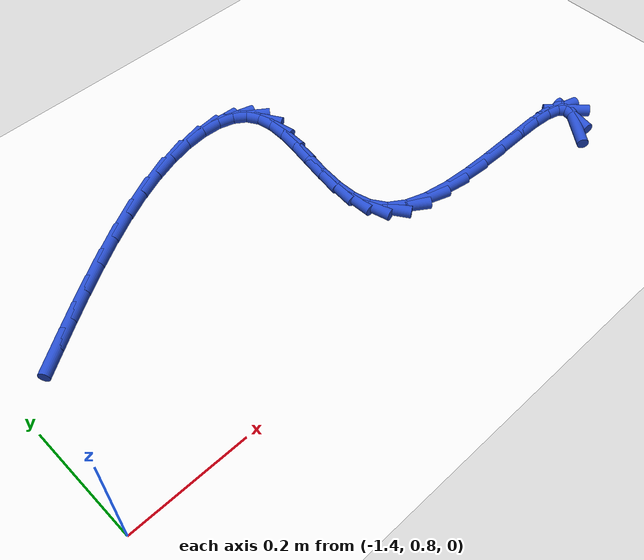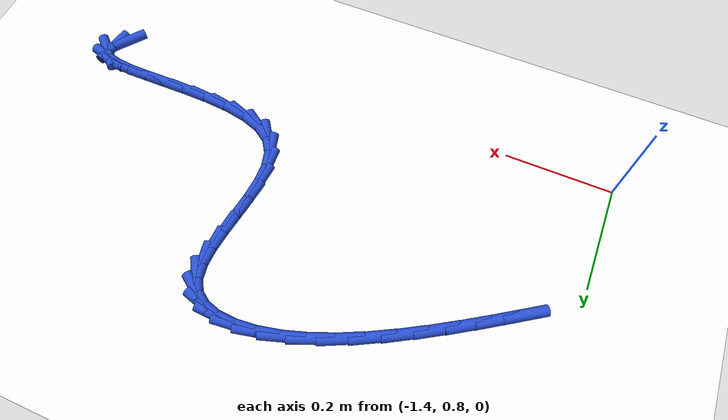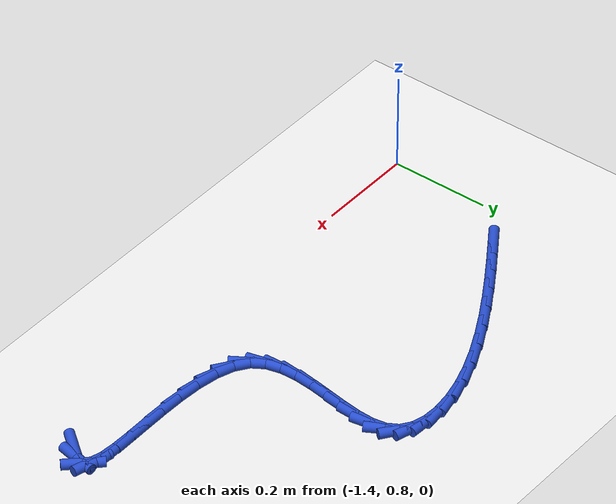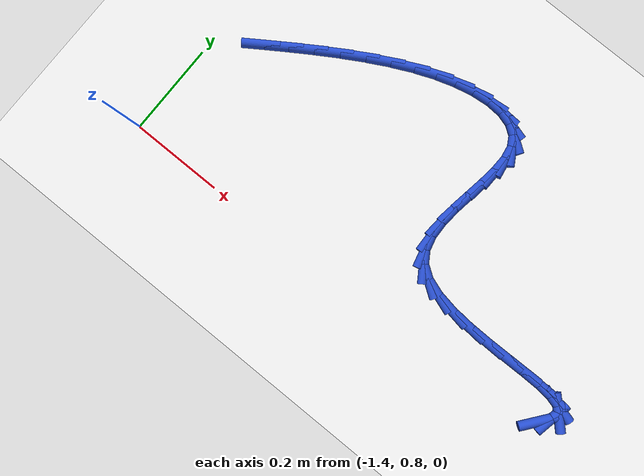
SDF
<sdf version="1.6">
 <world name="default">
  <model name="ground_plane">
   <static>1</static>
   <link name="link">
    <collision name="collision">
     <geometry><plane><normal>0 0 1</normal><size>100 100</size></plane></geometry>
     <surface><friction><ode><mu>100</mu><mu2>50</mu2></ode></friction></surface>
    </collision>
    <visual name="visual">
     <cast_shadows>0</cast_shadows>
     <geometry><plane><normal>0 0 1</normal><size>100 100</size></plane></geometry>
     <material>
      <script><uri>file://media/materials/scripts/gazebo.material</uri><name>Gazebo/WhiteGlow</name></script>
     </material>
    </visual>
   </link>
  </model>
  <model name="line">
   <link name="link_31">
    <pose>-0.4058090971265108 0.8472738672707357 0.01 0 1.57 0.911341981816925</pose>
    <collision name="collision">
     <geometry><cylinder><radius>0.01</radius><length>0.08</length></cylinder></geometry>
    </collision>
    <visual name="visual">
     <material>
      <script><name>Gazebo/Blue</name><uri>file://media/materials/scripts/gazebo.material</uri></script>
     </material>
     <geometry><cylinder><radius>0.01</radius><length>0.08</length></cylinder></geometry>
    </visual>
   </link>
   <link name="link_32">
    <pose>-0.3880265484437921 0.8702122554823173 0.01 0 1.57 1.3750526792150297</pose>
    <collision name="collision">
     <geometry><cylinder><radius>0.01</radius><length>0.08</length></cylinder></geometry>
    </collision>
    <visual name="visual">
     <material>
      <script><name>Gazebo/Blue</name><uri>file://media/materials/scripts/gazebo.material</uri></script>
     </material>
     <geometry><cylinder><radius>0.01</radius><length>0.08</length></cylinder></geometry>
    </visual>
   </link>
   <link name="link_33">
    <pose>-0.3847471597461507 0.8867512209621835 0.01 0 1.57 -0.7894456864371063</pose>
    <collision name="collision">
     <geometry><cylinder><radius>0.01</radius><length>0.08</length></cylinder></geometry>
    </collision>
    <visual name="visual">
     <material>
      <script><name>Gazebo/Blue</name><uri>file://media/materials/scripts/gazebo.material</uri></script>
     </material>
     <geometry><cylinder><radius>0.01</radius><length>0.08</length></cylinder></geometry>
    </visual>
   </link>
   <link name="link_34">
    <pose>-0.3954213623010875 0.8975121833147218 0.01 0 1.57 -0.2688832324161719</pose>
    <collision name="collision">
     <geometry><cylinder><radius>0.01</radius><length>0.08</length></cylinder></geometry>
    </collision>
    <visual name="visual">
     <material>
      <script><name>Gazebo/Blue</name><uri>file://media/materials/scripts/gazebo.material</uri></script>
     </material>
     <geometry><cylinder><radius>0.01</radius><length>0.08</length></cylinder></geometry>
    </visual>
   </link>
   <link name="link_35">
    <pose>-0.41779460253544365 0.9036772683841723 0.01 0 1.57 -0.08625716387484941</pose>
    <collision name="collision">
     <geometry><cylinder><radius>0.01</radius><length>0.08</length></cylinder></geometry>
    </collision>
    <visual name="visual">
     <material>
      <script><name>Gazebo/Blue</name><uri>file://media/materials/scripts/gazebo.material</uri></script>
     </material>
     <geometry><cylinder><radius>0.01</radius><length>0.08</length></cylinder></geometry>
    </visual>
   </link>
   <link name="link_36">
    <pose>-0.44961232687606045 0.9064286020147739 0.01 0 1.57 -0.013322443763485927</pose>
    <collision name="collision">
     <geometry><cylinder><radius>0.01</radius><length>0.08</length></cylinder></geometry>
    </collision>
    <visual name="visual">
     <material>
      <script><name>Gazebo/Blue</name><uri>file://media/materials/scripts/gazebo.material</uri></script>
     </material>
     <geometry><cylinder><radius>0.01</radius><length>0.08</length></cylinder></geometry>
    </visual>
   </link>
   <link name="link_37">
    <pose>-0.4886199817497788 0.9069483100507664 0.01 0 1.57 0.0120557463879833</pose>
    <collision name="collision">
     <geometry><cylinder><radius>0.01</radius><length>0.08</length></cylinder></geometry>
    </collision>
    <visual name="visual">
     <material>
      <script><name>Gazebo/Blue</name><uri>file://media/materials/scripts/gazebo.material</uri></script>
     </material>
     <geometry><cylinder><radius>0.01</radius><length>0.08</length></cylinder></geometry>
    </visual>
   </link>
   <link name="link_38">
    <pose>-0.5325630135834396 0.9064185183363891 0.01 0 1.57 0.008518300605534806</pose>
    <collision name="collision">
     <geometry><cylinder><radius>0.01</radius><length>0.08</length></cylinder></geometry>
    </collision>
    <visual name="visual">
     <material>
      <script><name>Gazebo/Blue</name><uri>file://media/materials/scripts/gazebo.material</uri></script>
     </material>
     <geometry><cylinder><radius>0.01</radius><length>0.08</length></cylinder></geometry>
    </visual>
   </link>
   <link name="link_39">
    <pose>-0.5791868688038845 0.9060213527158821 0.01 0 1.57 -0.019499842174835396</pose>
    <collision name="collision">
     <geometry><cylinder><radius>0.01</radius><length>0.08</length></cylinder></geometry>
    </collision>
    <visual name="visual">
     <material>
      <script><name>Gazebo/Blue</name><uri>file://media/materials/scripts/gazebo.material</uri></script>
     </material>
     <geometry><cylinder><radius>0.01</radius><length>0.08</length></cylinder></geometry>
    </visual>
   </link>
   <link name="link_40">
    <pose>-0.6262369938379544 0.9069389390334842 0.01 0 1.57 -0.07536176159319098</pose>
    <collision name="collision">
     <geometry><cylinder><radius>0.01</radius><length>0.08</length></cylinder></geometry>
    </collision>
    <visual name="visual">
     <material>
      <script><name>Gazebo/Blue</name><uri>file://media/materials/scripts/gazebo.material</uri></script>
     </material>
     <geometry><cylinder><radius>0.01</radius><length>0.08</length></cylinder></geometry>
    </visual>
   </link>
   <link name="link_41">
    <pose>-0.6714588351124904 0.9103534031334356 0.01 0 1.57 -0.17074786461326713</pose>
    <collision name="collision">
     <geometry><cylinder><radius>0.01</radius><length>0.08</length></cylinder></geometry>
    </collision>
    <visual name="visual">
     <material>
      <script><name>Gazebo/Blue</name><uri>file://media/materials/scripts/gazebo.material</uri></script>
     </material>
     <geometry><cylinder><radius>0.01</radius><length>0.08</length></cylinder></geometry>
    </visual>
   </link>
   <link name="link_42">
    <pose>-0.7125978390543336 0.9174468708599754 0.01 0 1.57 -0.3308787273079353</pose>
    <collision name="collision">
     <geometry><cylinder><radius>0.01</radius><length>0.08</length></cylinder></geometry>
    </collision>
    <visual name="visual">
     <material>
      <script><name>Gazebo/Blue</name><uri>file://media/materials/scripts/gazebo.material</uri></script>
     </material>
     <geometry><cylinder><radius>0.01</radius><length>0.08</length></cylinder></geometry>
    </visual>
   </link>
   <link name="link_43">
    <pose>-0.7473994520903247 0.9294014680573432 0.01 0 1.57 -0.6017263187127433</pose>
    <collision name="collision">
     <geometry><cylinder><radius>0.01</radius><length>0.08</length></cylinder></geometry>
    </collision>
    <visual name="visual">
     <material>
      <script><name>Gazebo/Blue</name><uri>file://media/materials/scripts/gazebo.material</uri></script>
     </material>
     <geometry><cylinder><radius>0.01</radius><length>0.08</length></cylinder></geometry>
    </visual>
   </link>
   <link name="link_44">
    <pose>-0.7736093890145485 0.9473991533755644 0.01 0 1.57 -0.9886532006786259</pose>
    <collision name="collision">
     <geometry><cylinder><radius>0.01</radius><length>0.08</length></cylinder></geometry>
    </collision>
    <visual name="visual">
     <material>
      <script><name>Gazebo/Blue</name><uri>file://media/materials/scripts/gazebo.material</uri></script>
     </material>
     <geometry><cylinder><radius>0.01</radius><length>0.08</length></cylinder></geometry>
    </visual>
   </link>
   <link name="link_45">
    <pose>-0.7898517021059728 0.972074676557782 0.01 0 1.57 -1.3203665644300926</pose>
    <collision name="collision">
     <geometry><cylinder><radius>0.01</radius><length>0.08</length></cylinder></geometry>
    </collision>
    <visual name="visual">
     <material>
      <script><name>Gazebo/Blue</name><uri>file://media/materials/scripts/gazebo.material</uri></script>
     </material>
     <geometry><cylinder><radius>0.01</radius><length>0.08</length></cylinder></geometry>
    </visual>
   </link>
   <link name="link_46">
    <pose>-0.7975828652404875 1.0022981736849026 0.01 0 1.57 -1.534461543025685</pose>
    <collision name="collision">
     <geometry><cylinder><radius>0.01</radius><length>0.08</length></cylinder></geometry>
    </collision>
    <visual name="visual">
     <material>
      <script><name>Gazebo/Blue</name><uri>file://media/materials/scripts/gazebo.material</uri></script>
     </material>
     <geometry><cylinder><radius>0.01</radius><length>0.08</length></cylinder></geometry>
    </visual>
   </link>
   <link name="link_47">
    <pose>-0.7988292093562954 1.0365847568686712 0.01 0 1.57 1.4838827031104111</pose>
    <collision name="collision">
     <geometry><cylinder><radius>0.01</radius><length>0.08</length></cylinder></geometry>
    </collision>
    <visual name="visual">
     <material>
      <script><name>Gazebo/Blue</name><uri>file://media/materials/scripts/gazebo.material</uri></script>
     </material>
     <geometry><cylinder><radius>0.01</radius><length>0.08</length></cylinder></geometry>
    </visual>
   </link>
   <link name="link_48">
    <pose>-0.7956170653915993 1.0734495382208322 0.01 0 1.57 1.4231797446355212</pose>
    <collision name="collision">
     <geometry><cylinder><radius>0.01</radius><length>0.08</length></cylinder></geometry>
    </collision>
    <visual name="visual">
     <material>
      <script><name>Gazebo/Blue</name><uri>file://media/materials/scripts/gazebo.material</uri></script>
     </material>
     <geometry><cylinder><radius>0.01</radius><length>0.08</length></cylinder></geometry>
    </visual>
   </link>
   <link name="link_49">
    <pose>-0.7899727642846015 1.1114076298531304 0.01 0 1.57 1.4111163979288632</pose>
    <collision name="collision">
     <geometry><cylinder><radius>0.01</radius><length>0.08</length></cylinder></geometry>
    </collision>
    <visual name="visual">
     <material>
      <script><name>Gazebo/Blue</name><uri>file://media/materials/scripts/gazebo.material</uri></script>
     </material>
     <geometry><cylinder><radius>0.01</radius><length>0.08</length></cylinder></geometry>
    </visual>
   </link>
   <link name="link_50">
    <pose>-0.7839226369735051 1.1489741438773104 0.01 0 1.57 1.4473141304484487</pose>
    <collision name="collision">
     <geometry><cylinder><radius>0.01</radius><length>0.08</length></cylinder></geometry>
    </collision>
    <visual name="visual">
     <material>
      <script><name>Gazebo/Blue</name><uri>file://media/materials/scripts/gazebo.material</uri></script>
     </material>
     <geometry><cylinder><radius>0.01</radius><length>0.08</length></cylinder></geometry>
    </visual>
   </link>
   <link name="link_51">
    <pose>-0.7794930143965126 1.184664192405117 0.01 0 1.57 1.546587679474687</pose>
    <collision name="collision">
     <geometry><cylinder><radius>0.01</radius><length>0.08</length></cylinder></geometry>
    </collision>
    <visual name="visual">
     <material>
      <script><name>Gazebo/Blue</name><uri>file://media/materials/scripts/gazebo.material</uri></script>
     </material>
     <geometry><cylinder><radius>0.01</radius><length>0.08</length></cylinder></geometry>
    </visual>
   </link>
   <link name="link_52">
    <pose>-0.7787102274918267 1.2169928875482952 0.01 0 1.57 -1.3946940972062774</pose>
    <collision name="collision">
     <geometry><cylinder><radius>0.01</radius><length>0.08</length></cylinder></geometry>
    </collision>
    <visual name="visual">
     <material>
      <script><name>Gazebo/Blue</name><uri>file://media/materials/scripts/gazebo.material</uri></script>
     </material>
     <geometry><cylinder><radius>0.01</radius><length>0.08</length></cylinder></geometry>
    </visual>
   </link>
   <link name="link_53">
    <pose>-0.7836006071976497 1.244475341418589 0.01 0 1.57 -1.0379626142749292</pose>
    <collision name="collision">
     <geometry><cylinder><radius>0.01</radius><length>0.08</length></cylinder></geometry>
    </collision>
    <visual name="visual">
     <material>
      <script><name>Gazebo/Blue</name><uri>file://media/materials/scripts/gazebo.material</uri></script>
     </material>
     <geometry><cylinder><radius>0.01</radius><length>0.08</length></cylinder></geometry>
    </visual>
   </link>
   <link name="link_54">
    <pose>-0.7961042457244494 1.265677656306789 0.01 0 1.57 -0.6138053453899145</pose>
    <collision name="collision">
     <geometry><cylinder><radius>0.01</radius><length>0.08</length></cylinder></geometry>
    </collision>
    <visual name="visual">
     <material>
      <script><name>Gazebo/Blue</name><uri>file://media/materials/scripts/gazebo.material</uri></script>
     </material>
     <geometry><cylinder><radius>0.01</radius><length>0.08</length></cylinder></geometry>
    </visual>
   </link>
   <link name="link_55">
    <pose>-0.8165769379141731 1.2801026784539085 0.01 0 1.57 -0.28307058510540345</pose>
    <collision name="collision">
     <geometry><cylinder><radius>0.01</radius><length>0.08</length></cylinder></geometry>
    </collision>
    <visual name="visual">
     <material>
      <script><name>Gazebo/Blue</name><uri>file://media/materials/scripts/gazebo.material</uri></script>
     </material>
     <geometry><cylinder><radius>0.01</radius><length>0.08</length></cylinder></geometry>
    </visual>
   </link>
   <link name="link_56">
    <pose>-0.8439845740586148 1.2880750598456512 0.01 0 1.57 -0.056230418537408726</pose>
    <collision name="collision">
     <geometry><cylinder><radius>0.01</radius><length>0.08</length></cylinder></geometry>
    </collision>
    <visual name="visual">
     <material>
      <script><name>Gazebo/Blue</name><uri>file://media/materials/scripts/gazebo.material</uri></script>
     </material>
     <geometry><cylinder><radius>0.01</radius><length>0.08</length></cylinder></geometry>
    </visual>
   </link>
   <link name="link_57">
    <pose>-0.8772458932559423 1.289947331448176 0.01 0 1.57 0.10154087060811326</pose>
    <collision name="collision">
     <geometry><cylinder><radius>0.01</radius><length>0.08</length></cylinder></geometry>
    </collision>
    <visual name="visual">
     <material>
      <script><name>Gazebo/Blue</name><uri>file://media/materials/scripts/gazebo.material</uri></script>
     </material>
     <geometry><cylinder><radius>0.01</radius><length>0.08</length></cylinder></geometry>
    </visual>
   </link>
   <link name="link_58">
    <pose>-0.915279634604323 1.2860720242276447 0.01 0 1.57 0.21862679672249244</pose>
    <collision name="collision">
     <geometry><cylinder><radius>0.01</radius><length>0.08</length></cylinder></geometry>
    </collision>
    <visual name="visual">
     <material>
      <script><name>Gazebo/Blue</name><uri>file://media/materials/scripts/gazebo.material</uri></script>
     </material>
     <geometry><cylinder><radius>0.01</radius><length>0.08</length></cylinder></geometry>
    </visual>
   </link>
   <link name="link_59">
    <pose>-0.9570045372019248 1.2768016691502175 0.01 0 1.57 0.3122732990493578</pose>
    <collision name="collision">
     <geometry><cylinder><radius>0.01</radius><length>0.08</length></cylinder></geometry>
    </collision>
    <visual name="visual">
     <material>
      <script><name>Gazebo/Blue</name><uri>file://media/materials/scripts/gazebo.material</uri></script>
     </material>
     <geometry><cylinder><radius>0.01</radius><length>0.08</length></cylinder></geometry>
    </visual>
   </link>
   <link name="link_60">
    <pose>-1.0013393429118043 1.2624888023531644 0.01 0 1.57 0.3901425774062699</pose>
    <collision name="collision">
     <geometry><cylinder><radius>0.01</radius><length>0.08</length></cylinder></geometry>
    </collision>
    <visual name="visual">
     <material>
      <script><name>Gazebo/Blue</name><uri>file://media/materials/scripts/gazebo.material</uri></script>
     </material>
     <geometry><cylinder><radius>0.01</radius><length>0.08</length></cylinder></geometry>
    </visual>
   </link>
   <link name="link_61">
    <pose>-1.047265384507908 1.2436030223640375 0.01 0 1.57 0.44999594107570073</pose>
    <collision name="collision">
     <geometry><cylinder><radius>0.01</radius><length>0.08</length></cylinder></geometry>
    </collision>
    <visual name="visual">
     <material>
      <script><name>Gazebo/Blue</name><uri>file://media/materials/scripts/gazebo.material</uri></script>
     </material>
     <geometry><cylinder><radius>0.01</radius><length>0.08</length></cylinder></geometry>
    </visual>
   </link>
   <link name="link_62">
    <pose>-1.0939883316323495 1.2210334999716461 0.01 0 1.57 0.4953188959967603</pose>
    <collision name="collision">
     <geometry><cylinder><radius>0.01</radius><length>0.08</length></cylinder></geometry>
    </collision>
    <visual name="visual">
     <material>
      <script><name>Gazebo/Blue</name><uri>file://media/materials/scripts/gazebo.material</uri></script>
     </material>
     <geometry><cylinder><radius>0.01</radius><length>0.08</length></cylinder></geometry>
    </visual>
   </link>
   <link name="link_63">
    <pose>-1.1407640953341134 1.1957633713520346 0.01 0 1.57 0.5297723828528761</pose>
    <collision name="collision">
     <geometry><cylinder><radius>0.01</radius><length>0.08</length></cylinder></geometry>
    </collision>
    <visual name="visual">
     <material>
      <script><name>Gazebo/Blue</name><uri>file://media/materials/scripts/gazebo.material</uri></script>
     </material>
     <geometry><cylinder><radius>0.01</radius><length>0.08</length></cylinder></geometry>
    </visual>
   </link>
   <link name="link_64">
    <pose>-1.1868485866621818 1.1687757726812475 0.01 0 1.57 0.5556340524834525</pose>
    <collision name="collision">
     <geometry><cylinder><radius>0.01</radius><length>0.08</length></cylinder></geometry>
    </collision>
    <visual name="visual">
     <material>
      <script><name>Gazebo/Blue</name><uri>file://media/materials/scripts/gazebo.material</uri></script>
     </material>
     <geometry><cylinder><radius>0.01</radius><length>0.08</length></cylinder></geometry>
    </visual>
   </link>
   <link name="link_65">
    <pose>-1.2314977166655388 1.1410538401353305 0.01 0 1.57 0.5741844785211364</pose>
    <collision name="collision">
     <geometry><cylinder><radius>0.01</radius><length>0.08</length></cylinder></geometry>
    </collision>
    <visual name="visual">
     <material>
      <script><name>Gazebo/Blue</name><uri>file://media/materials/scripts/gazebo.material</uri></script>
     </material>
     <geometry><cylinder><radius>0.01</radius><length>0.08</length></cylinder></geometry>
    </visual>
   </link>
   <link name="link_66">
    <pose>-1.273967396393168 1.1135807098903276 0.01 0 1.57 0.5858479553913527</pose>
    <collision name="collision">
     <geometry><cylinder><radius>0.01</radius><length>0.08</length></cylinder></geometry>
    </collision>
    <visual name="visual">
     <material>
      <script><name>Gazebo/Blue</name><uri>file://media/materials/scripts/gazebo.material</uri></script>
     </material>
     <geometry><cylinder><radius>0.01</radius><length>0.08</length></cylinder></geometry>
    </visual>
   </link>
   <link name="link_67">
    <pose>-1.313513536894052 1.087339518122285 0.01 0 1.57 0.590066518010081</pose>
    <collision name="collision">
     <geometry><cylinder><radius>0.01</radius><length>0.08</length></cylinder></geometry>
    </collision>
    <visual name="visual">
     <material>
      <script><name>Gazebo/Blue</name><uri>file://media/materials/scripts/gazebo.material</uri></script>
     </material>
     <geometry><cylinder><radius>0.01</radius><length>0.08</length></cylinder></geometry>
    </visual>
   </link>
  </model>
 </world>
</sdf>
